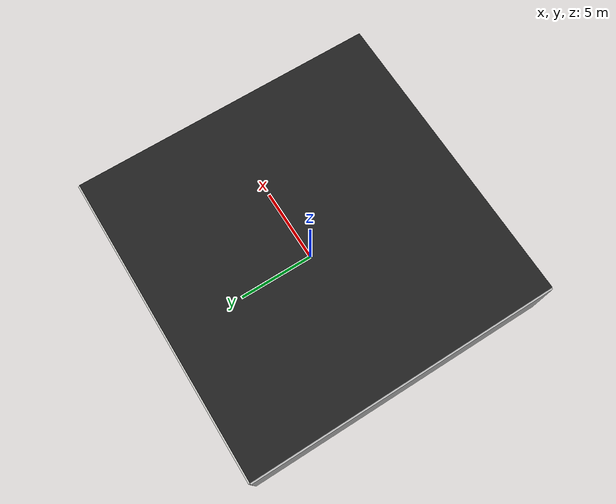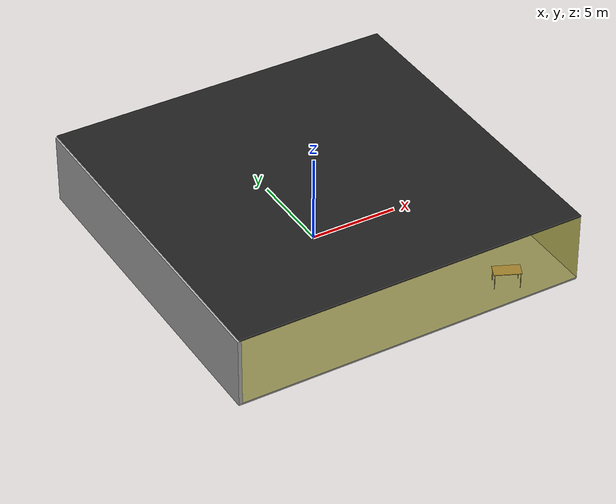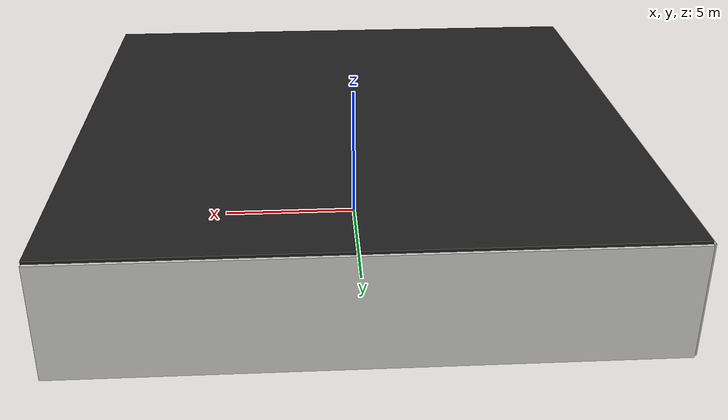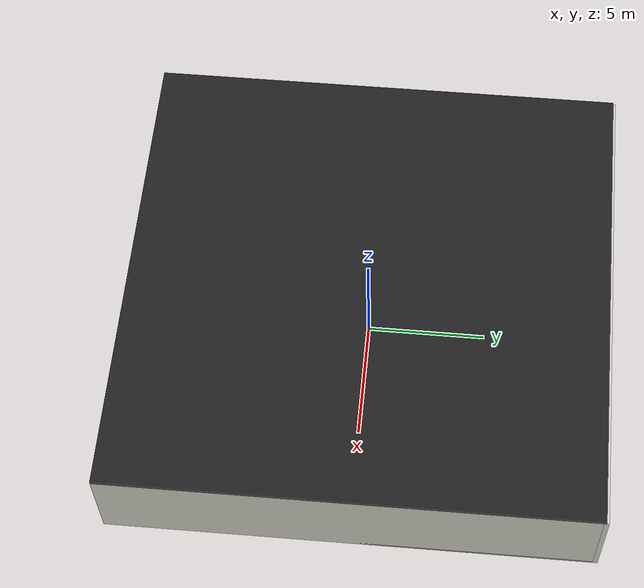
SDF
<sdf version="1.4">
 <world name="default">
  <physics type="ode">
   <max_step_size>0.001</max_step_size>
   <real_time_factor>1</real_time_factor>
   <real_time_update_rate>1000</real_time_update_rate>
   <gravity>0 0 -9.8</gravity>
  </physics>
  <scene><ambient>0.4 0.4 0.4 1</ambient><background>0.7 0.7 0.7 1</background><shadows>1</shadows></scene>
  <model name="Surrounding">
   <static>1</static>
   <link name="Ceiling">
    <collision name="Ceiling_Collision"><geometry><box><size>20 20 0.1</size></box></geometry></collision>
    <visual name="Ceiling_Visual">
     <geometry><box><size>20 20 0.1</size></box></geometry>
     <material>
      <script><uri>file://media/materials/scripts/gazebo.material</uri><name>Gazebo/FlatBlack</name></script>
     </material>
    </visual>
    <pose>0 0 4.05 0 0 0</pose>
   </link>
   <link name="Wall_South">
    <collision name="Wall_South_Collision">
     <geometry><box><size>20 0 4</size></box></geometry>
     <pose>0 0 2 0 -0 0</pose>
    </collision>
    <visual name="Wall_South_Visual">
     <pose>0 0 2 0 -0 0</pose>
     <geometry><box><size>20 0 4</size></box></geometry>
     <material>
      <script>
       <uri>file://media/materials/scripts/gazebo.material</uri>
       <name>Gazebo/YellowTransparent</name>
      </script>
     </material>
    </visual>
    <velocity_decay><linear>0</linear><angular>0</angular></velocity_decay>
    <pose>0 -10 0 0 -0 0</pose>
   </link>
   <link name="Wall_East">
    <collision name="Wall_21_Collision">
     <geometry><box><size>20 0 4</size></box></geometry>
     <pose>0 0 2 0 -0 0</pose>
    </collision>
    <visual name="Wall_21_Visual">
     <pose>0 0 2 0 -0 0</pose>
     <geometry><box><size>20 0 4</size></box></geometry>
     <material>
      <script><uri>file://media/materials/scripts/gazebo.material</uri><name>Gazebo/PaintedWall</name></script>
     </material>
    </visual>
    <velocity_decay><linear>0</linear><angular>0</angular></velocity_decay>
    <pose>10 0 0 0 -0 1.5708</pose>
   </link>
   <link name="Wall_North">
    <collision name="Wall_22_Collision">
     <geometry><box><size>20 0.2 4</size></box></geometry>
     <pose>0 0 2 0 -0 0</pose>
    </collision>
    <visual name="Wall_22_Visual">
     <pose>0 0 2 0 -0 0</pose>
     <geometry><box><size>20 0.2 4</size></box></geometry>
     <material>
      <script><uri>file://media/materials/scripts/gazebo.material</uri><name>Gazebo/CeilingTiled</name></script>
     </material>
    </visual>
    <velocity_decay><linear>0</linear><angular>0</angular></velocity_decay>
    <pose>0 10 0 0 -0 0</pose>
   </link>
   <link name="Wall_West">
    <collision name="Wall_23_Collision">
     <geometry><box><size>20 0.2 4</size></box></geometry>
     <pose>0 0 2 0 -0 0</pose>
    </collision>
    <visual name="Wall_23_Visual">
     <pose>0 0 2 0 -0 0</pose>
     <geometry><box><size>20 0.2 4</size></box></geometry>
     <material>
      <script><uri>file://media/materials/scripts/gazebo.material</uri><name>Gazebo/PioneerBody</name></script>
     </material>
    </visual>
    <velocity_decay><linear>0</linear><angular>0</angular></velocity_decay>
    <pose>-10 0 0 0 0 -1.5708</pose>
   </link>
   <link name="Ground_link">
    <collision name="collision">
     <pose>0 0 .05 0 -0 0</pose>
     <geometry><box><size>20 20 0.1</size></box></geometry>
    </collision>
    <visual name="visual">
     <pose>0 0 .05 0 -0 0</pose>
     <geometry><box><size>20 20 0.1</size></box></geometry>
     <material>
      <script><uri>file://media/materials/scripts/gazebo.material</uri><name>Gazebo/GreyGradientSky</name></script>
     </material>
    </visual>
   </link>
   <static>1</static>
  </model>
  <spherical_coordinates>
   <surface_model>EARTH_WGS84</surface_model>
   <latitude_deg>0</latitude_deg>
   <longitude_deg>0</longitude_deg>
   <elevation>0</elevation>
   <heading_deg>0</heading_deg>
  </spherical_coordinates>
  <light name="lightball_0" type="diffuse">
   <diffuse>0.8 0.8 0.8 1</diffuse>
   <specular>0.2 0.2 0.2 1</specular>
   <attenuation>
    <range>100</range>
    <constant>0.7</constant>
    <linear>0.01</linear>
    <quadratic>0.001</quadratic>
   </attenuation>
   <direction>-0.5 0.1 -0.9</direction>
   <pose>0.944862279869 -8.35289677701 1.75684161207 0 0 0</pose>
  </light>
  <light name="lightball_1" type="diffuse">
   <diffuse>0.8 0.8 0.8 1</diffuse>
   <specular>0.2 0.2 0.2 1</specular>
   <attenuation>
    <range>100</range>
    <constant>0.7</constant>
    <linear>0.01</linear>
    <quadratic>0.001</quadratic>
   </attenuation>
   <direction>-0.5 0.1 -0.9</direction>
   <pose>-3.89686058934 -7.62934969857 1.95796658363 0 0 0</pose>
  </light>
  <light name="lightball_2" type="diffuse">
   <diffuse>0.8 0.8 0.8 1</diffuse>
   <specular>0.2 0.2 0.2 1</specular>
   <attenuation>
    <range>100</range>
    <constant>0.7</constant>
    <linear>0.01</linear>
    <quadratic>0.001</quadratic>
   </attenuation>
   <direction>-0.5 0.1 -0.9</direction>
   <pose>-5.18667587588 9.49612865507 0.67983427093 0 0 0</pose>
  </light>
  <light name="lightball_3" type="diffuse">
   <diffuse>0.8 0.8 0.8 1</diffuse>
   <specular>0.2 0.2 0.2 1</specular>
   <attenuation>
    <range>100</range>
    <constant>0.7</constant>
    <linear>0.01</linear>
    <quadratic>0.001</quadratic>
   </attenuation>
   <direction>-0.5 0.1 -0.9</direction>
   <pose>-9.48885931075 -2.44676949078 3.2262234891 0 0 0</pose>
  </light>
  <include>
   <uri>model://robocup_3Dsim_goal</uri>
   <pose>-7.60887198877 0.589762645478 0 0 0 2.00914874153</pose>
  </include>
  <include><uri>model://cabinet</uri><pose>-7.64503044266 7.8244681672 0 0 0 1.23247610312</pose></include>
  <include>
   <uri>model://construction_cone</uri>
   <pose>-3.59716687961 6.79218420584 0 0 0 2.29945531879</pose>
  </include>
  <include><uri>model://cabinet</uri><pose>-1.44112925809 -3.6893476075 0 0 0 1.18094538646</pose></include>
  <include>
   <uri>model://construction_cone</uri>
   <pose>-1.23146156004 1.08560943718 0 0 0 0.202748061412</pose>
  </include>
  <include><uri>model://cabinet</uri><pose>-1.3593950141 3.40151723473 0 0 0 2.38038538187</pose></include>
  <include><uri>model://cabinet</uri><pose>1.78799788495 -5.24541587505 0 0 0 2.71469355098</pose></include>
  <include><uri>model://table</uri><pose>6.5261777317 -8.61916004524 0 0 0 2.71117953389</pose></include>
  <include>
   <uri>model://textured_shapes</uri>
   <pose>7.02762127563 6.6604345096 0 0 0 2.23037119406</pose>
  </include>
 </world>
</sdf>

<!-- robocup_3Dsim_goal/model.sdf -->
<sdf version="1.5">
  <model name="robocup_3d_goal">
    <static>true</static>
    <link name="left_post">
      <pose>0 1.05 0.45 0 0 0</pose>
      <collision name="collision">
        <geometry>
          <cylinder>
            <radius>0.05</radius>
            <length>0.9</length>
          </cylinder>
        </geometry>
      </collision>
      <visual name="visual">
        <geometry>
          <cylinder>
            <radius>0.05</radius>
            <length>0.9</length>
          </cylinder>
        </geometry>
        <material>
          <script>
            <uri>file://media/materials/scripts/gazebo.material</uri>
            <name>Gazebo/ZincYellow</name>
          </script>
        </material>
      </visual>
    </link>
    <link name="left_support_horiz_lower">
      <pose>0.30 1.05 0.01 0 0 0</pose>
      <collision name="collision">
        <geometry>
          <box>
            <size>0.50 0.02 0.02</size>
          </box>
        </geometry>
      </collision>
      <visual name="visual">
        <geometry>
          <box>
            <size>0.50 0.02 0.02</size>
          </box>
        </geometry>
        <material>
          <script>
            <uri>file://media/materials/scripts/gazebo.material</uri>
            <name>Gazebo/White</name>
          </script>
        </material>
      </visual>
    </link>
    <link name="left_support_horiz_upper">
      <pose>0.30 1.05 0.79 0 0 0</pose>
      <collision name="collision">
        <geometry>
          <box>
            <size>0.50 0.02 0.02</size>
          </box>
        </geometry>
      </collision>
      <visual name="visual">
        <geometry>
          <box>
            <size>0.50 0.02 0.02</size>
          </box>
        </geometry>
        <material>
          <script>
            <uri>file://media/materials/scripts/gazebo.material</uri>
            <name>Gazebo/White</name>
          </script>
        </material>
      </visual>
    </link>
    <link name="left_support_vertical">
      <pose>0.56 1.05 0.4 0 1.5708 0</pose>
      <collision name="collision">
        <geometry>
          <box>
            <size>0.80 0.02 0.02</size>
          </box>
        </geometry>
      </collision>
      <visual name="visual">
        <geometry>
          <box>
            <size>0.80 0.02 0.02</size>
          </box>
        </geometry>
        <material>
          <script>
            <uri>file://media/materials/scripts/gazebo.material</uri>
            <name>Gazebo/White</name>
          </script>
        </material>
      </visual>
    </link>
    <link name="right_support_horiz_lower">
      <pose>0.30 -1.05 0.01 0 0 0</pose>
      <collision name="collision">
        <geometry>
          <box>
            <size>0.50 0.02 0.02</size>
          </box>
        </geometry>
      </collision>
      <visual name="visual">
        <geometry>
          <box>
            <size>0.50 0.02 0.02</size>
          </box>
        </geometry>
        <material>
          <script>
            <uri>file://media/materials/scripts/gazebo.material</uri>
            <name>Gazebo/White</name>
          </script>
        </material>
      </visual>
    </link>
    <link name="right_support_horiz_upper">
      <pose>0.30 -1.05 0.79 0 0 0</pose>
      <collision name="collision">
        <geometry>
          <box>
            <size>0.50 0.02 0.02</size>
          </box>
        </geometry>
      </collision>
      <visual name="visual">
        <geometry>
          <box>
            <size>0.50 0.02 0.02</size>
          </box>
        </geometry>
        <material>
          <script>
            <uri>file://media/materials/scripts/gazebo.material</uri>
            <name>Gazebo/White</name>
          </script>
        </material>
      </visual>
    </link>
    <link name="right_support_vertical">
      <pose>0.56 -1.05 0.4 0 1.5708 0</pose>
      <collision name="collision">
        <geometry>
          <box>
            <size>0.80 0.02 0.02</size>
          </box>
        </geometry>
      </collision>
      <visual name="visual">
        <geometry>
          <box>
            <size>0.80 0.02 0.02</size>
          </box>
        </geometry>
        <material>
          <script>
            <uri>file://media/materials/scripts/gazebo.material</uri>
            <name>Gazebo/White</name>
          </script>
        </material>
      </visual>
    </link>
    <link name="center_support_horiz_lower">
      <pose>0.56 0 0.01 0 1.5708 0</pose>
      <collision name="collision">
        <geometry>
          <box>
            <size>0.02 2.08 0.02</size>
          </box>
        </geometry>
      </collision>
      <visual name="visual">
        <geometry>
          <box>
            <size>0.02 2.08 0.02</size>
          </box>
        </geometry>
        <material>
          <script>
            <uri>file://media/materials/scripts/gazebo.material</uri>
            <name>Gazebo/White</name>
          </script>
        </material>
      </visual>
    </link>
    <link name="center_support_horiz_upper">
      <pose>0.56 0 0.79 0 1.5708 0</pose>
      <collision name="collision">
        <geometry>
          <box>
            <size>0.02 2.08 0.02</size>
          </box>
        </geometry>
      </collision>
      <visual name="visual">
        <geometry>
          <box>
            <size>0.02 2.08 0.02</size>
          </box>
        </geometry>
        <material>
          <script>
            <uri>file://media/materials/scripts/gazebo.material</uri>
            <name>Gazebo/White</name>
          </script>
        </material>
      </visual>
    </link>
    <link name="right_post">
      <pose>0 -1.05 0.45 0 0 0</pose>
      <collision name="collision">
        <geometry>
          <cylinder>
            <radius>0.05</radius>
            <length>0.9</length>
          </cylinder>
        </geometry>
      </collision>
      <visual name="visual">
        <geometry>
          <cylinder>
            <radius>0.05</radius>
            <length>0.9</length>
          </cylinder>
        </geometry>
        <material>
          <script>
            <uri>file://media/materials/scripts/gazebo.material</uri>
            <name>Gazebo/ZincYellow</name>
          </script>
        </material>
      </visual>
    </link>
    <link name="crossbar">
      <pose>0 0 0.85 1.57 1.57 0</pose>
      <collision name="collision">
        <geometry>
          <cylinder>
            <radius>0.05</radius>
            <length>2.0</length>
          </cylinder>
        </geometry>
      </collision>
      <visual name="visual">
        <geometry>
          <cylinder>
            <radius>0.05</radius>
            <length>2.0</length>
          </cylinder>
        </geometry>
        <material>
          <script>
            <uri>file://media/materials/scripts/gazebo.material</uri>
            <name>Gazebo/ZincYellow</name>
          </script>
        </material>
      </visual>
    </link>
    <link name="center_net">
      <pose>0.56 0 0.40 0 0 0</pose>
      <collision name="collision">
        <geometry>
          <box>
            <size>0.01 2.1 0.80</size>
          </box>
        </geometry>
      </collision>
      <visual name="visual">
        <geometry>
          <box>
            <size>0.01 2.1 0.80</size>
          </box>
        </geometry>
        <material>
          <script>
            <uri>model://../model_source/models/robocup09_spl_field/materials/scripts/</uri>
            <uri>model://../model_source/models/robocup09_spl_field/materials/textures/</uri>
            <name>RoboCup/Net</name>
          </script>
        </material>
      </visual>
    </link>
    <link name="left_net">
      <pose>0.30 1.05 0.40 0 0 0</pose>
      <collision name="collision">
        <geometry>
          <box>
            <size>0.50 0.01 0.76</size>
          </box>
        </geometry>
      </collision>
      <visual name="visual">
        <geometry>
          <box>
            <size>0.50 0.01 0.76</size>
          </box>
        </geometry>
        <material>
          <script>
            <uri>model://../model_source/models/robocup09_spl_field/materials/scripts/</uri>
            <uri>model://../model_source/models/robocup09_spl_field/materials/textures/</uri>
            <name>RoboCup/Net</name>
          </script>
        </material>
      </visual>
    </link>
    <link name="right_net">
      <pose>0.30 -1.05 0.40 0 0 0</pose>
      <collision name="collision">
        <geometry>
          <box>
            <size>0.50 0.01 0.76</size>
          </box>
        </geometry>
      </collision>
      <visual name="visual">
        <geometry>
          <box>
            <size>0.50 0.01 0.76</size>
          </box>
        </geometry>
        <material>
          <script>
            <uri>model://../model_source/models/robocup09_spl_field/materials/scripts/</uri>
            <uri>model://../model_source/models/robocup09_spl_field/materials/textures/</uri>
            <name>RoboCup/Net</name>
          </script>
        </material>
      </visual>
    </link>
  </model>
</sdf>

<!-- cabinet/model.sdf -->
<sdf version="1.5">
  <model name="cabinet">
    <static>true</static>
    <link name="cabinet_bottom_plate">
      <inertial>
        <pose>0 0 -1 0 0 0</pose>
        <inertia>
          <ixx>2.050000</ixx>
          <ixy>0</ixy>
          <ixz>0</ixz>
          <iyy>2.050000</iyy>
          <iyz>0</iyz>
          <izz>2.050000</izz>
        </inertia>
        <mass>25.000000</mass>
      </inertial>
      <collision name="cabinet_bottom_plate_geom">
        <pose>0 0 0.010000 0 0 0</pose>
        <geometry>
          <box>
            <size>0.450000 0.450000 0.020000</size>
          </box>
        </geometry>
      </collision>
      <visual name="cabinet_bottom_plate_geom_visual">
        <pose>0 0 0.010000 0 0 0</pose>
        <geometry>
          <box>
            <size>0.450000 0.450000 0.020000</size>
          </box>
        </geometry>
        <material>
          <script>
            <uri>model://media/materials/scripts/gazebo.material</uri>
            <name>Gazebo/Wood</name>
          </script>
        </material>
      </visual>
      <collision name="cabinet_bottom_plate_geom_cabinet_back_plate">
        <pose>0.235000 0 0.510000 0 0 0</pose>
        <geometry>
          <box>
            <size>0.020000 0.450000 1.020000</size>
          </box>
        </geometry>
      </collision>
      <visual name="cabinet_bottom_plate_geom_cabinet_back_plate_visual">
        <pose>0.235000 0 0.510000 0 0 0</pose>
        <geometry>
          <box>
            <size>0.020000 0.450000 1.020000</size>
          </box>
        </geometry>
        <material>
          <script>
            <uri>model://media/materials/scripts/gazebo.material</uri>
            <name>Gazebo/Wood</name>
          </script>
        </material>
      </visual>
      <collision name="cabinet_bottom_plate_geom_cabinet_left_plate">
        <pose>0 0.235000 0.510000 0 0 0</pose>
        <geometry>
          <box>
            <size>0.450000 0.020000 1.020000</size>
          </box>
        </geometry>
      </collision>
      <visual name="cabinet_bottom_plate_geom_cabinet_left_plate_visual">
        <pose>0 0.235000 0.510000 0 0 0</pose>
        <geometry>
          <box>
            <size>0.450000 0.020000 1.020000</size>
          </box>
        </geometry>
        <material>
          <script>
            <uri>model://media/materials/scripts/gazebo.material</uri>
            <name>Gazebo/Wood</name>
          </script>
        </material>
      </visual>
      <collision name="cabinet_bottom_plate_geom_cabinet_middle_plate">
        <pose>0 0 0.510000 0 0 0</pose>
        <geometry>
          <box>
            <size>0.450000 0.450000 0.020000</size>
          </box>
        </geometry>
      </collision>
      <visual name="cabinet_bottom_plate_geom_cabinet_middle_plate_visual">
        <pose>0 0 0.510000 0 0 0</pose>
        <geometry>
          <box>
            <size>0.450000 0.450000 0.020000</size>
          </box>
        </geometry>
        <material>
          <script>
            <uri>model://media/materials/scripts/gazebo.material</uri>
            <name>Gazebo/Wood</name>
          </script>
        </material>
      </visual>
      <collision name="cabinet_bottom_plate_geom_cabinet_right_plate">
        <pose>0 -0.235000 0.510000 0 0 0</pose>
        <geometry>
          <box>
            <size>0.450000 0.020000 1.020000</size>
          </box>
        </geometry>
      </collision>
      <visual name="cabinet_bottom_plate_geom_cabinet_right_plate_visual">
        <pose>0 -0.235000 0.510000 0 0 0</pose>
        <geometry>
          <box>
            <size>0.450000 0.020000 1.020000</size>
          </box>
        </geometry>
        <material>
          <script>
            <uri>model://media/materials/scripts/gazebo.material</uri>
            <name>Gazebo/Wood</name>
          </script>
        </material>
      </visual>
      <collision name="cabinet_bottom_plate_geom_cabinet_top_plate">
        <pose>0 0 1.010000 0 0 0</pose>
        <geometry>
          <box>
            <size>0.450000 0.450000 0.020000</size>
          </box>
        </geometry>
      </collision>
      <visual name="cabinet_bottom_plate_geom_cabinet_top_plate_visual">
        <pose>0 0 1.010000 0 0 0</pose>
        <geometry>
          <box>
            <size>0.450000 0.450000 0.020000</size>
          </box>
        </geometry>
        <material>
          <script>
            <uri>model://media/materials/scripts/gazebo.material</uri>
            <name>Gazebo/Wood</name>
          </script>
        </material>
      </visual>
    </link>
  </model>
</sdf>

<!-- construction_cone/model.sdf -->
<sdf version="1.5">
  <model name="Construction Cone">
    <link name="link">
      <collision name="collision">
        <geometry>
          <mesh>
            <scale>10 10 10</scale>
            <uri>file://isr-testbed/construction_cone/meshes/construction_cone.dae</uri>
          </mesh>
        </geometry>
      </collision>
      <visual name="visual">
        <geometry>
          <mesh>
            <scale>10 10 10</scale>
            <uri>file://isr-testbed/construction_cone/meshes/construction_cone.dae</uri>
          </mesh>
        </geometry>
      </visual>
    </link>
  </model>
</sdf>

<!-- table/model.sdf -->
<sdf version="1.5">
  <model name="table">
    <static>true</static>
    <link name="link">
      <collision name="surface">
        <pose>0 0 1.0 0 0 0</pose>
        <geometry>
          <box>
            <size>1.5 0.8 0.03</size>
          </box>
        </geometry>
        <surface>
          <friction>
            <ode>
              <mu>0.6</mu>
              <mu2>0.6</mu2>
            </ode>
          </friction>
        </surface>
      </collision>
      <visual name="visual1">
        <pose>0 0 1.0 0 0 0</pose>
        <geometry>
          <box>
            <size>1.5 0.8 0.03</size>
          </box>
        </geometry>
        <material>
          <script>
            <uri>model://media/materials/scripts/gazebo.material</uri>
            <name>Gazebo/Wood</name>
          </script>
        </material>
      </visual>
      <collision name="front_left_leg">
        <pose>0.68 0.38 0.5 0 0 0</pose>
        <geometry>
          <cylinder>
            <radius>0.02</radius>
            <length>1.0</length>
          </cylinder>
        </geometry>
      </collision>
      <visual name="front_left_leg">
        <pose>0.68 0.38 0.5 0 0 0</pose>
        <geometry>
          <cylinder>
            <radius>0.02</radius>
            <length>1.0</length>
          </cylinder>
        </geometry>
        <material>
          <script>
            <uri>model://media/materials/scripts/gazebo.material</uri>
            <name>Gazebo/Grey</name>
          </script>
        </material>
      </visual>
      <collision name="front_right_leg">
        <pose>0.68 -0.38 0.5 0 0 0</pose>
        <geometry>
          <cylinder>
            <radius>0.02</radius>
            <length>1.0</length>
          </cylinder>
        </geometry>
      </collision>
      <visual name="front_right_leg">
        <pose>0.68 -0.38 0.5 0 0 0</pose>
        <geometry>
          <cylinder>
            <radius>0.02</radius>
            <length>1.0</length>
          </cylinder>
        </geometry>
        <material>
          <script>
            <uri>model://media/materials/scripts/gazebo.material</uri>
            <name>Gazebo/Grey</name>
          </script>
        </material>
      </visual>
      <collision name="back_right_leg">
        <pose>-0.68 -0.38 0.5 0 0 0</pose>
        <geometry>
          <cylinder>
            <radius>0.02</radius>
            <length>1.0</length>
          </cylinder>
        </geometry>
      </collision>
      <visual name="back_right_leg">
        <pose>-0.68 -0.38 0.5 0 0 0</pose>
        <geometry>
          <cylinder>
            <radius>0.02</radius>
            <length>1.0</length>
          </cylinder>
        </geometry>
        <material>
          <script>
            <uri>model://media/materials/scripts/gazebo.material</uri>
            <name>Gazebo/Grey</name>
          </script>
        </material>
      </visual>
      <collision name="back_left_leg">
        <pose>-0.68 0.38 0.5 0 0 0</pose>
        <geometry>
          <cylinder>
            <radius>0.02</radius>
            <length>1.0</length>
          </cylinder>
        </geometry>
      </collision>
      <visual name="back_left_leg">
        <pose>-0.68 0.38 0.5 0 0 0</pose>
        <geometry>
          <cylinder>
            <radius>0.02</radius>
            <length>1.0</length>
          </cylinder>
        </geometry>
        <material>
          <script>
            <uri>model://media/materials/scripts/gazebo.material</uri>
            <name>Gazebo/Grey</name>
          </script>
        </material>
      </visual>
    </link>
  </model>
</sdf>

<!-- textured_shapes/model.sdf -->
<sdf version="1.6">
  <model name="textured_shapes">
    <pose>0 0 0.5 0 0 0</pose>
    <link name="box">
      <pose>0 -1.5 0 0 0 0</pose>
      <collision name="collision">
        <geometry>
          <box>
            <size>1 1 1</size>
          </box>
        </geometry>
      </collision>
      <visual name="visual">
        <geometry>
          <box>
            <size>1 1 1</size>
          </box>
        </geometry>
        <material>
          <script>
            <uri>model://../model_source/models/textured_shapes/materials/scripts</uri>
            <uri>model://../model_source/models/textured_shapes/materials/textures</uri>
            <name>TexturedShape/Squares</name>
          </script>
        </material>
      </visual>
    </link>
    <link name="sphere">
      <collision name="collision">
        <geometry>
          <sphere>
            <radius>0.5</radius>
          </sphere>
        </geometry>
      </collision>
      <visual name="visual">
        <geometry>
          <sphere>
            <radius>0.5</radius>
          </sphere>
        </geometry>
        <material>
          <script>
            <uri>model://../model_source/models/textured_shapes/materials/scripts</uri>
            <uri>model://../model_source/models/textured_shapes/materials/textures</uri>
            <name>TexturedShape/Squares</name>
          </script>
        </material>
      </visual>
    </link>
    <link name="cylinder">
      <pose>0 1.5 0 0 0 0</pose>
      <collision name="collision">
        <geometry>
          <cylinder>
            <radius>0.5</radius>
            <length>1</length>
          </cylinder>
        </geometry>
      </collision>
      <visual name="visual">
        <geometry>
          <cylinder>
            <radius>0.5</radius>
            <length>1</length>
          </cylinder>
        </geometry>
        <material>
          <script>
            <uri>model://../model_source/models/textured_shapes/materials/scripts</uri>
            <uri>model://../model_source/models/textured_shapes/materials/textures</uri>
            <name>TexturedShape/Squares</name>
          </script>
        </material>
      </visual>
    </link>
  </model>
</sdf>
